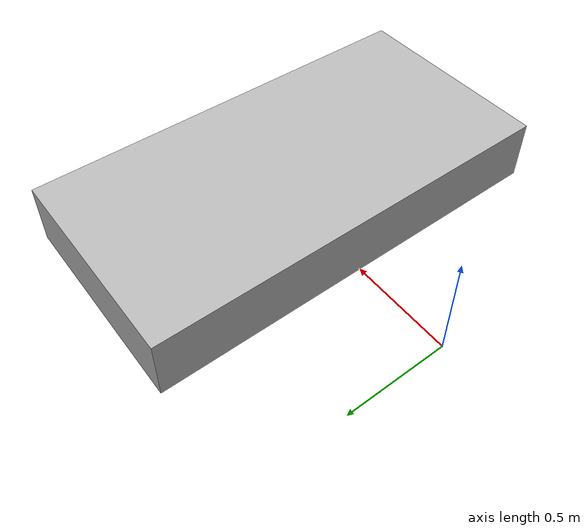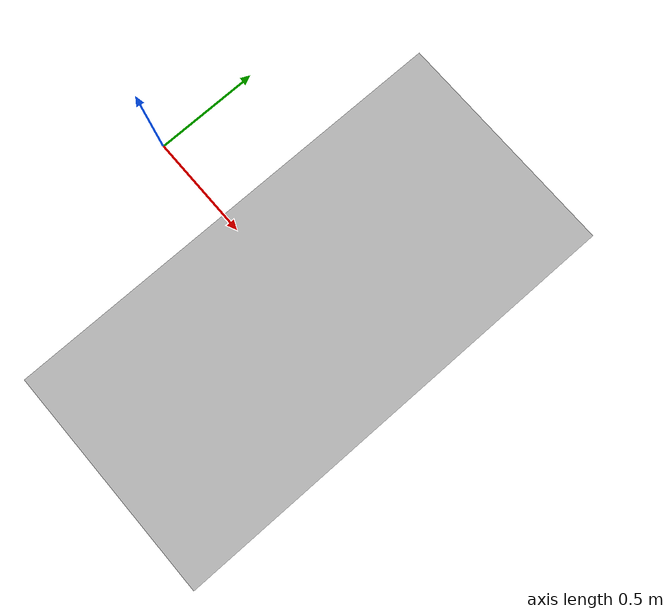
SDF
<?xml version="1.0"?>
<sdf version="1.4">
  <model name="platform_0.3">
    <pose>1.0 0 0.15 0 0 0</pose>
    <static>true</static>

    <link name="platform">
      <visual name="platform_visual">
        <pose>0 0 0 0 0 0</pose>
        <geometry>
          <box>
            <size>1 2 0.3</size>
          </box>
        </geometry>
      </visual>
      <collision name="platform_collision">
        <pose>0 0 0 0 0 0</pose>
        <geometry>
          <box>
            <size>1 2 0.3</size>
          </box>
        </geometry>
      </collision>
    </link>

  </model>
</sdf>
